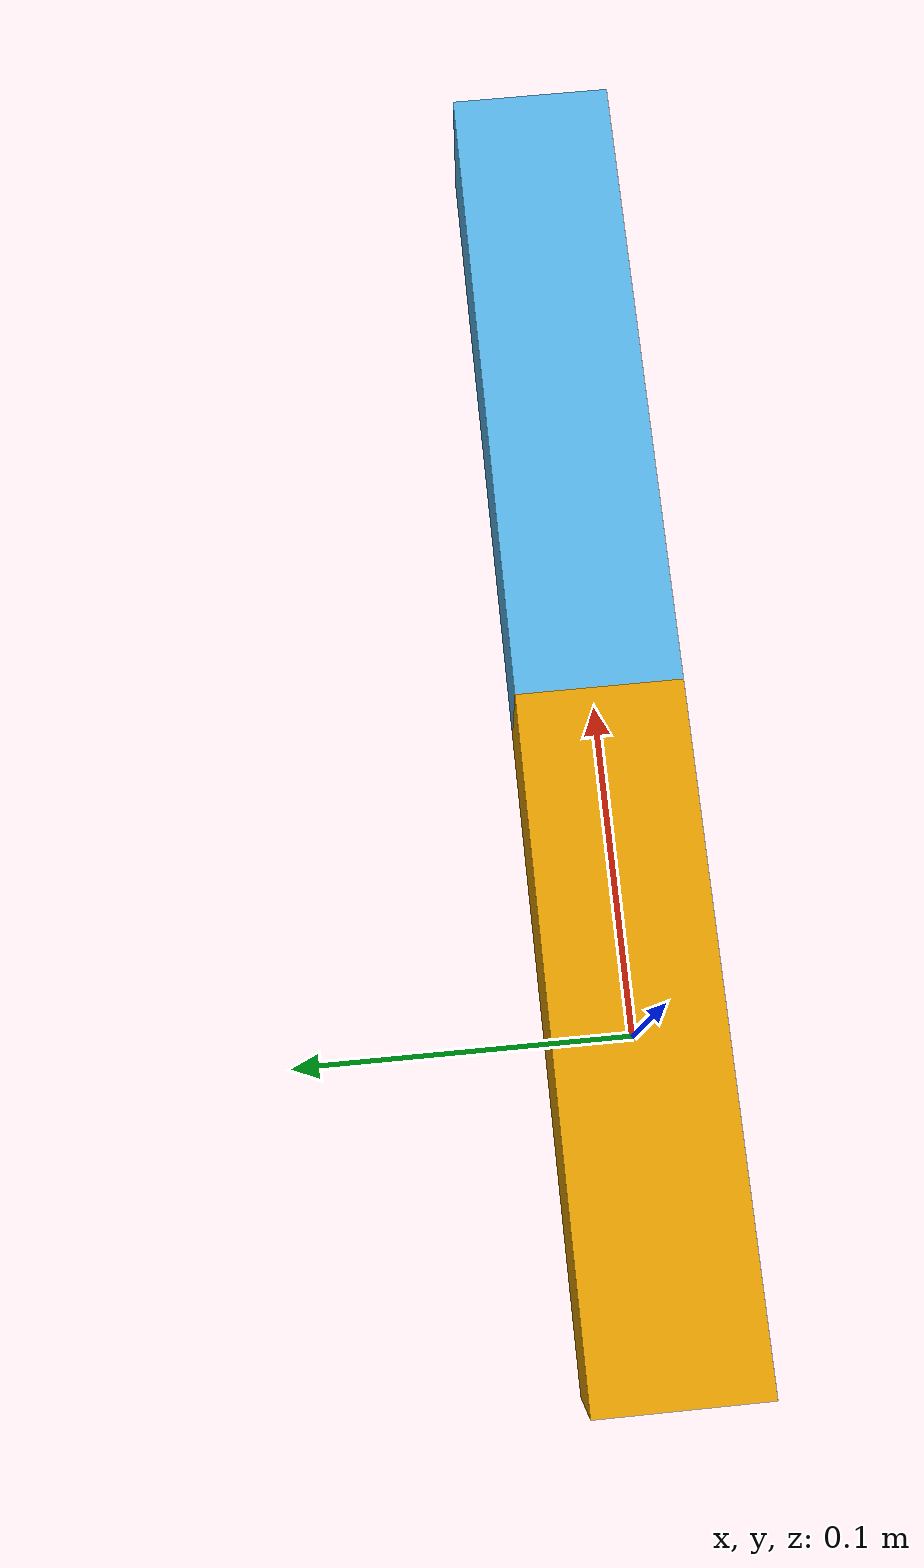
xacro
<?xml version="1.0"?>
<robot xmlns:xacro="http://www.ros.org/wiki/xacro" name="arm">

    <xacro:property name="bi_len" value="0.2" />
    <xacro:property name="wheel_len" value="0.005" />

    <xacro:macro name="limb" params="prefix offset" >
        <link name="${prefix}_limb">
            <visual>
                <geometry>
                    <box size="${bi_len} ${bi_len / 4} ${bi_len / 4}"/>
                </geometry>
                <origin xyz="${offset}"/>
            </visual>
            <collision>
                <geometry>
                    <box size="${bi_len} ${bi_len / 4} ${bi_len / 4}"/>
                </geometry>
                <origin xyz="${offset}"/>
            </collision>
        </link>
    </xacro:macro>

    <xacro:macro name="joint_mesh" params="name offset">
        <link name="${name}">
            <visual>
                <geometry>
                    <box size="${bi_len / 4} ${bi_len / 4} ${bi_len / 4}"/>
                </geometry>
                <origin xyz="${offset}"/>
                <material>
                    <color rgba="1 0 0 1"/>
                </material>
            </visual>
        </link>
    </xacro:macro>

    <xacro:limb prefix="right" offset="0 0 0"/>
    <xacro:limb prefix="far_right" offset=".1 0 0"/>

    <joint name="elbow_joint" type="revolute">
        <parent link="right_limb"/>
        <child link="far_right_limb"/>
        <limit lower="-1.2" upper="0" effort="0.0" velocity="0.0"/>
        <origin xyz = ".1 0 0"/>
        <axis xyz="0.0 1 0.0"/>
    </joint>

</robot>
